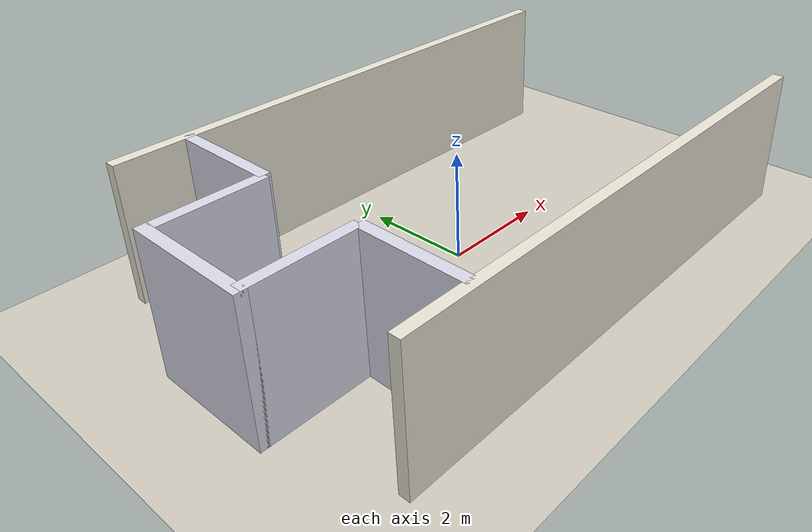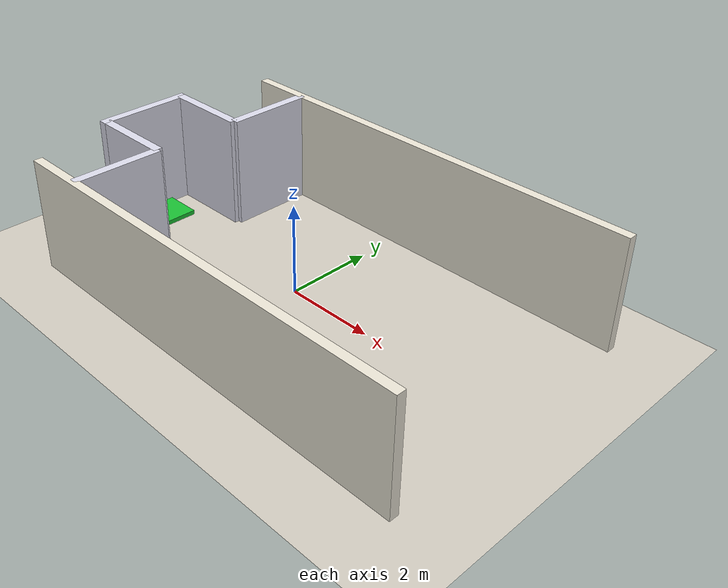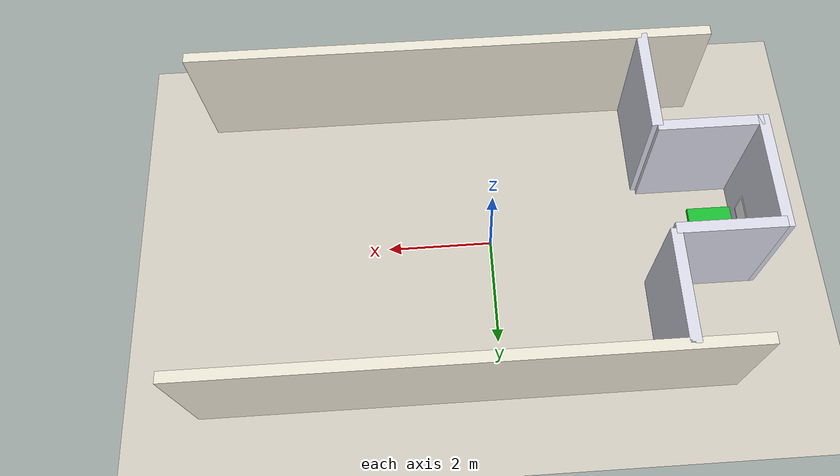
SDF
<?xml version="1.0" ?>
<sdf version="1.8">
  <world name="docking_room">

    <physics name="1ms" type="ignored">
      <max_step_size>0.001</max_step_size>
      <real_time_factor>1.0</real_time_factor>
    </physics>

    <plugin filename="gz-sim-physics-system"        name="gz::sim::systems::Physics"/>
    <plugin filename="gz-sim-user-commands-system"  name="gz::sim::systems::UserCommands"/>
    <plugin filename="gz-sim-scene-broadcaster-system" name="gz::sim::systems::SceneBroadcaster"/>
    <plugin filename="gz-sim-sensors-system"        name="gz::sim::systems::Sensors">
      <render_engine>ogre2</render_engine>
    </plugin>

    <!-- Sun -->
    <light type="directional" name="sun">
      <cast_shadows>true</cast_shadows>
      <pose>0 0 10 0 0 0</pose>
      <diffuse>0.9 0.9 0.9 1</diffuse>
      <specular>0.3 0.3 0.3 1</specular>
      <attenuation><range>1000</range><constant>0.9</constant><linear>0.01</linear><quadratic>0.001</quadratic></attenuation>
      <direction>-0.5 0.1 -0.9</direction>
    </light>

    <!-- Interior fill light -->
    <light type="point" name="room_light">
      <pose>-1 0 2.2 0 0 0</pose>
      <diffuse>0.8 0.8 0.7 1</diffuse>
      <specular>0.1 0.1 0.1 1</specular>
      <attenuation><range>15</range><constant>0.5</constant><linear>0.1</linear><quadratic>0.01</quadratic></attenuation>
    </light>

    <!-- Dock area light -->
    <light type="point" name="dock_light">
      <pose>-4.2 0 2.0 0 0 0</pose>
      <diffuse>1.0 1.0 0.9 1</diffuse>
      <specular>0.2 0.2 0.2 1</specular>
      <attenuation><range>5</range><constant>0.3</constant><linear>0.05</linear><quadratic>0.01</quadratic></attenuation>
    </light>

    <!-- Floor -->
    <model name="floor">
      <static>true</static>
      <link name="link">
        <collision name="col"><geometry><plane><normal>0 0 1</normal></plane></geometry></collision>
        <visual name="vis">
          <geometry><plane><normal>0 0 1</normal><size>20 20</size></plane></geometry>
          <material><ambient>0.82 0.80 0.75 1</ambient><diffuse>0.82 0.80 0.75 1</diffuse></material>
        </visual>
      </link>
    </model>

    <!-- ===== ROOM MAIN WALLS ===== -->
    <!-- Room: x=-3 to x=4.5, y=-3 to y=3.  Alcove protrudes to x=-4.9 -->

    <!-- Back wall LEFT (gap in center for alcove entrance: y=1 to y=3) -->
    <model name="back_wall_left">
      <static>true</static>
      <pose>-3 2 1.25 0 0 0</pose>
      <link name="link">
        <collision name="col"><geometry><box><size>0.2 2 2.5</size></box></geometry></collision>
        <visual name="vis">
          <geometry><box><size>0.2 2 2.5</size></box></geometry>
          <material><ambient>0.86 0.86 0.92 1</ambient><diffuse>0.86 0.86 0.92 1</diffuse></material>
        </visual>
      </link>
    </model>

    <!-- Back wall RIGHT (y=-3 to y=-1) -->
    <model name="back_wall_right">
      <static>true</static>
      <pose>-3 -2 1.25 0 0 0</pose>
      <link name="link">
        <collision name="col"><geometry><box><size>0.2 2 2.5</size></box></geometry></collision>
        <visual name="vis">
          <geometry><box><size>0.2 2 2.5</size></box></geometry>
          <material><ambient>0.86 0.86 0.92 1</ambient><diffuse>0.86 0.86 0.92 1</diffuse></material>
        </visual>
      </link>
    </model>

    <!-- Left wall (y=3, full length) -->
    <model name="left_wall">
      <static>true</static>
      <pose>0.6 3 1.25 0 0 0</pose>
      <link name="link">
        <collision name="col"><geometry><box><size>9.8 0.2 2.5</size></box></geometry></collision>
        <visual name="vis">
          <geometry><box><size>9.8 0.2 2.5</size></box></geometry>
          <material><ambient>0.92 0.90 0.84 1</ambient><diffuse>0.92 0.90 0.84 1</diffuse></material>
        </visual>
      </link>
    </model>

    <!-- Right wall (y=-3, full length) -->
    <model name="right_wall">
      <static>true</static>
      <pose>0.6 -3 1.25 0 0 0</pose>
      <link name="link">
        <collision name="col"><geometry><box><size>9.8 0.2 2.5</size></box></geometry></collision>
        <visual name="vis">
          <geometry><box><size>9.8 0.2 2.5</size></box></geometry>
          <material><ambient>0.92 0.90 0.84 1</ambient><diffuse>0.92 0.90 0.84 1</diffuse></material>
        </visual>
      </link>
    </model>

    <!-- ===== DOCKING ALCOVE ===== -->
    <!-- Alcove: x from -3 to -4.9, y from -1 to 1 -->

    <!-- Alcove left wall -->
    <model name="alcove_left_wall">
      <static>true</static>
      <pose>-3.95 1.0 1.25 0 0 0</pose>
      <link name="link">
        <collision name="col"><geometry><box><size>1.9 0.2 2.5</size></box></geometry></collision>
        <visual name="vis">
          <geometry><box><size>1.9 0.2 2.5</size></box></geometry>
          <material><ambient>0.86 0.86 0.92 1</ambient><diffuse>0.86 0.86 0.92 1</diffuse></material>
        </visual>
      </link>
    </model>

    <!-- Alcove right wall -->
    <model name="alcove_right_wall">
      <static>true</static>
      <pose>-3.95 -1.0 1.25 0 0 0</pose>
      <link name="link">
        <collision name="col"><geometry><box><size>1.9 0.2 2.5</size></box></geometry></collision>
        <visual name="vis">
          <geometry><box><size>1.9 0.2 2.5</size></box></geometry>
          <material><ambient>0.86 0.86 0.92 1</ambient><diffuse>0.86 0.86 0.92 1</diffuse></material>
        </visual>
      </link>
    </model>

    <!-- Alcove back wall -->
    <model name="alcove_back_wall">
      <static>true</static>
      <pose>-4.9 0 1.25 0 0 0</pose>
      <link name="link">
        <collision name="col"><geometry><box><size>0.2 2.2 2.5</size></box></geometry></collision>
        <visual name="vis">
          <geometry><box><size>0.2 2.2 2.5</size></box></geometry>
          <material><ambient>0.86 0.86 0.92 1</ambient><diffuse>0.86 0.86 0.92 1</diffuse></material>
        </visual>
      </link>
    </model>

    <!-- Docking Platform -->
    <model name="docking_platform">
      <static>true</static>
      <pose>-4.4 0 0.05 0 0 0</pose>
      <link name="link">
        <collision name="col"><geometry><box><size>0.9 0.9 0.1</size></box></geometry></collision>
        <visual name="vis">
          <geometry><box><size>0.9 0.9 0.1</size></box></geometry>
          <material>
            <ambient>0.1 0.75 0.2 1</ambient>
            <diffuse>0.1 0.75 0.2 1</diffuse>
            <emissive>0.0 0.15 0.0 1</emissive>
          </material>
        </visual>
      </link>
    </model>

    <!-- ArUco Marker Panel (on alcove back wall, facing +X toward robot) -->
    <!-- Thin box: 0.01m deep (X), 0.45m wide (Y), 0.45m tall (Z) -->
    <include>
      <uri>model://aruco_marker</uri>
      <pose>-4.78 0 0.7 0 0 0</pose>
    </include>

  </world>
</sdf>

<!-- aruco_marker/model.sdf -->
<sdf version="1.8">
  <model name="aruco_marker">
    <static>true</static>
    <link name="link">
      <!-- White border backing plate -->
      <visual name="backing">
        <geometry>
          <box><size>0.01 0.52 0.52</size></box>
        </geometry>
        <material>
          <ambient>1 1 1 1</ambient>
          <diffuse>1 1 1 1</diffuse>
          <specular>0.05 0.05 0.05 1</specular>
        </material>
      </visual>
      <!-- ArUco marker face with texture -->
      <visual name="marker_face">
        <pose>0.006 0 0 0 0 0</pose>
        <geometry>
          <box><size>0.001 0.45 0.45</size></box>
        </geometry>
        <material>
          <ambient>1 1 1 1</ambient>
          <diffuse>1 1 1 1</diffuse>
          <specular>0.0 0.0 0.0 1</specular>
          <pbr>
            <metal>
              <albedo_map>model://aruco_marker/meshes/aruco_marker.png</albedo_map>
              <metalness>0.0</metalness>
              <roughness>1.0</roughness>
            </metal>
          </pbr>
        </material>
      </visual>
    </link>
  </model>
</sdf>
